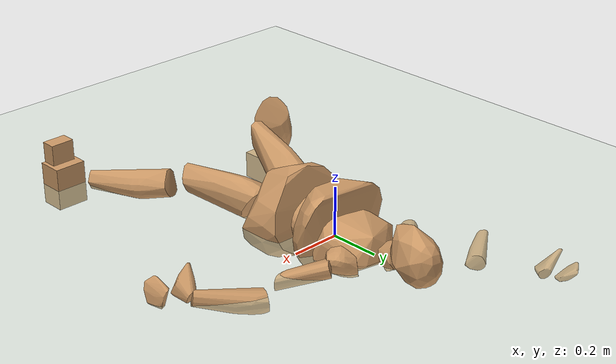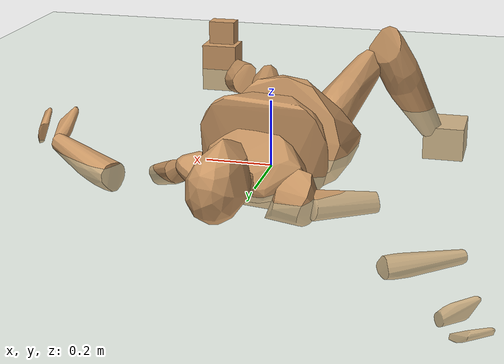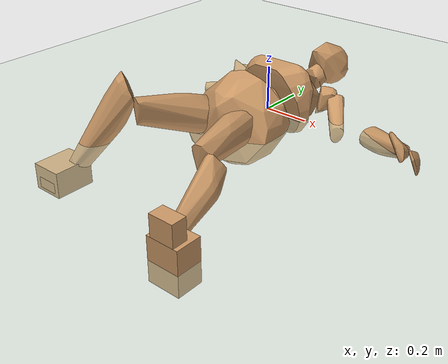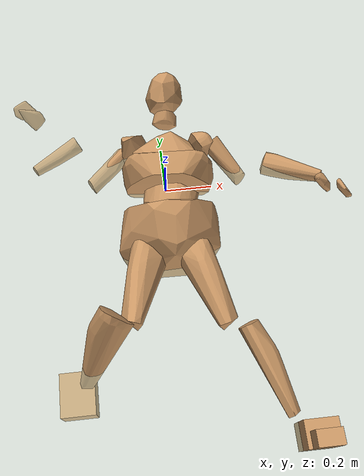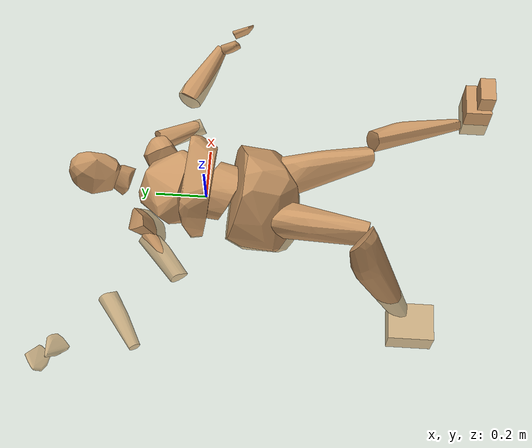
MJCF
<?xml version='1.0' encoding='UTF-8'?>
<mujoco model="humanoid">
  <compiler coordinate="local" meshdir="assets" />
  <default>
    <joint damping="0.1" armature="0.01" stiffness="100.0" limited="true" />
    <geom conaffinity="1" condim="3" contype="7" margin="0.001" rgba="0.8 0.6 .4 1" type="box" size="0.01 0.01 0.01" />
  </default>
  <asset>
    <texture type="skybox" builtin="gradient" rgb1=".4 .5 .6" rgb2="0 0 0" width="100" height="100" />
    <texture builtin="flat" height="1278" mark="cross" markrgb="1 1 1" name="texgeom" random="0.01" rgb1="0.8 0.6 0.4" rgb2="0.8 0.6 0.4" type="cube" width="127" />
    <texture builtin="checker" height="100" name="texplane" rgb1="0 0 0" rgb2="0.8 0.8 0.8" type="2d" width="100" />
    <material name="MatPlane" reflectance="0.5" shininess="1" specular="1" texrepeat="60 60" texture="texplane" />
    <material name="geom" texture="texgeom" texuniform="true" />
    <mesh file="Pelvis.stl" name="Pelvis_mesh" />
    <mesh file="L_Hip.stl" name="L_Hip_mesh" />
    <mesh file="R_Hip.stl" name="R_Hip_mesh" />
    <mesh file="Torso.stl" name="Torso_mesh" />
    <mesh file="L_Knee.stl" name="L_Knee_mesh" />
    <mesh file="R_Knee.stl" name="R_Knee_mesh" />
    <mesh file="Spine.stl" name="Spine_mesh" />
    <mesh file="L_Ankle.stl" name="L_Ankle_mesh" />
    <mesh file="R_Ankle.stl" name="R_Ankle_mesh" />
    <mesh file="Chest.stl" name="Chest_mesh" />
    <mesh file="L_Toe.stl" name="L_Toe_mesh" />
    <mesh file="R_Toe.stl" name="R_Toe_mesh" />
    <mesh file="Neck.stl" name="Neck_mesh" />
    <mesh file="L_Thorax.stl" name="L_Thorax_mesh" />
    <mesh file="R_Thorax.stl" name="R_Thorax_mesh" />
    <mesh file="Head.stl" name="Head_mesh" />
    <mesh file="L_Shoulder.stl" name="L_Shoulder_mesh" />
    <mesh file="R_Shoulder.stl" name="R_Shoulder_mesh" />
    <mesh file="L_Elbow.stl" name="L_Elbow_mesh" />
    <mesh file="R_Elbow.stl" name="R_Elbow_mesh" />
    <mesh file="L_Wrist.stl" name="L_Wrist_mesh" />
    <mesh file="R_Wrist.stl" name="R_Wrist_mesh" />
    <mesh file="L_Hand.stl" name="L_Hand_mesh" />
    <mesh file="R_Hand.stl" name="R_Hand_mesh" />
  </asset>
  <worldbody>
    <light cutoff="100" diffuse="1 1 1" dir="-0 0 -1.3" directional="true" exponent="1" pos="0 0 1.3" specular=".1 .1 .1" />
    <geom conaffinity="1" condim="3" name="floor" pos="0 0 0" rgba="0.8 0.9 0.8 1" size="100 100 .2" type="plane" material="MatPlane" />
    <body name="Pelvis" pos="-0.0015 -0.211 0.0427">
      <freejoint name="Pelvis" />
      <geom type="mesh" mesh="Pelvis_mesh" density="1000" contype="1" conaffinity="1" />
      <body name="L_Hip" pos="0.0748 -0.0975 -0.0052">
        <joint name="L_Hip_x" type="hinge" pos="0 0 0" axis="1 0 0" user="800 80 1 500" armature="0.01" range="-90.0000 90.0000" damping="0.1" stiffness="10" />
        <joint name="L_Hip_y" type="hinge" pos="0 0 0" axis="0 1 0" user="800 80 1 500" armature="0.01" range="-90.0000 90.0000" damping="0.1" stiffness="10" />
        <joint name="L_Hip_z" type="hinge" pos="0 0 0" axis="0 0 1" user="800 80 1 500" armature="0.01" range="-90.0000 90.0000" damping="0.1" stiffness="10" />
        <geom type="mesh" mesh="L_Hip_mesh" density="1000" contype="1" conaffinity="1" />
        <body name="L_Knee" pos="0.1895 -0.3461 0.0433">
          <joint name="L_Knee_x" type="hinge" pos="0 0 0" axis="1 0 0" user="800 80 1 500" armature="0.01" range="-180.0000 180.0000" damping="0.1" stiffness="10" />
          <joint name="L_Knee_y" type="hinge" pos="0 0 0" axis="0 1 0" user="800 80 1 500" armature="0.01" range="-5.6250 5.6250" damping="0.1" stiffness="10" />
          <joint name="L_Knee_z" type="hinge" pos="0 0 0" axis="0 0 1" user="800 80 1 500" armature="0.01" range="-5.6250 5.6250" damping="0.1" stiffness="10" />
          <geom type="mesh" mesh="L_Knee_mesh" density="1000" contype="1" conaffinity="1" />
          <body name="L_Ankle" pos="0.157 -0.3946 -0.0955">
            <joint name="L_Ankle_x" type="hinge" pos="0 0 0" axis="1 0 0" user="800 80 1 500" armature="0.01" range="-90.0000 90.0000" damping="0.1" stiffness="10" />
            <joint name="L_Ankle_y" type="hinge" pos="0 0 0" axis="0 1 0" user="800 80 1 500" armature="0.01" range="-90.0000 90.0000" damping="0.1" stiffness="10" />
            <joint name="L_Ankle_z" type="hinge" pos="0 0 0" axis="0 0 1" user="800 80 1 500" armature="0.01" range="-90.0000 90.0000" damping="0.1" stiffness="10" />
            <geom density="363.8337" type="box" pos="0.0395 -0.0241 0.0171" size="0.0652 0.0515 0.0872" quat="1.0000 0.0000 0.0000 0.0000" />
            <body name="L_Toe" pos="0.064 -0.0577 0.1106">
              <joint name="L_Toe_x" type="hinge" pos="0 0 0" axis="1 0 0" user="500 50 1 500" armature="0.01" range="-90.0000 90.0000" damping="0.1" stiffness="10" />
              <joint name="L_Toe_y" type="hinge" pos="0 0 0" axis="0 1 0" user="500 50 1 500" armature="0.01" range="-45.0000 45.0000" damping="0.1" stiffness="10" />
              <joint name="L_Toe_z" type="hinge" pos="0 0 0" axis="0 0 1" user="500 50 1 500" armature="0.01" range="-45.0000 45.0000" damping="0.1" stiffness="10" />
              <geom density="312.2989" type="box" pos="-0.0245 0.0125 0.0245" size="0.0491 0.0303 0.0547" quat="1.0000 0.0000 0.0000 0.0000" />
            </body>
          </body>
        </body>
      </body>
      <body name="R_Hip" pos="-0.0824 -0.0905 -0.0033">
        <joint name="R_Hip_x" type="hinge" pos="0 0 0" axis="1 0 0" user="800 80 1 500" armature="0.01" range="-90.0000 90.0000" damping="0.1" stiffness="10" />
        <joint name="R_Hip_y" type="hinge" pos="0 0 0" axis="0 1 0" user="800 80 1 500" armature="0.01" range="-90.0000 90.0000" damping="0.1" stiffness="10" />
        <joint name="R_Hip_z" type="hinge" pos="0 0 0" axis="0 0 1" user="800 80 1 500" armature="0.01" range="-90.0000 90.0000" damping="0.1" stiffness="10" />
        <geom type="mesh" mesh="R_Hip_mesh" density="1000" contype="1" conaffinity="1" />
        <body name="R_Knee" pos="-0.1774 -0.3003 0.2061">
          <joint name="R_Knee_x" type="hinge" pos="0 0 0" axis="1 0 0" user="800 80 1 500" armature="0.01" range="-180.0000 180.0000" damping="0.1" stiffness="10" />
          <joint name="R_Knee_y" type="hinge" pos="0 0 0" axis="0 1 0" user="800 80 1 500" armature="0.01" range="-5.6250 5.6250" damping="0.1" stiffness="10" />
          <joint name="R_Knee_z" type="hinge" pos="0 0 0" axis="0 0 1" user="800 80 1 500" armature="0.01" range="-5.6250 5.6250" damping="0.1" stiffness="10" />
          <geom type="mesh" mesh="R_Knee_mesh" density="1000" contype="1" conaffinity="1" />
          <body name="R_Ankle" pos="-0.1352 -0.1846 -0.3725">
            <joint name="R_Ankle_x" type="hinge" pos="0 0 0" axis="1 0 0" user="800 80 1 500" armature="0.01" range="-90.0000 90.0000" damping="0.1" stiffness="10" />
            <joint name="R_Ankle_y" type="hinge" pos="0 0 0" axis="0 1 0" user="800 80 1 500" armature="0.01" range="-90.0000 90.0000" damping="0.1" stiffness="10" />
            <joint name="R_Ankle_z" type="hinge" pos="0 0 0" axis="0 0 1" user="800 80 1 500" armature="0.01" range="-90.0000 90.0000" damping="0.1" stiffness="10" />
            <geom density="298.13422" type="box" pos="-0.0411 -0.0329 -0.0117" size="0.0704 0.0868 0.0573" quat="1.0000 0.0000 0.0000 0.0000" />
            <body name="R_Toe" pos="-0.0789 -0.1116 -0.0352">
              <joint name="R_Toe_x" type="hinge" pos="0 0 0" axis="1 0 0" user="500 50 1 500" armature="0.01" range="-90.0000 90.0000" damping="0.1" stiffness="10" />
              <joint name="R_Toe_y" type="hinge" pos="0 0 0" axis="0 1 0" user="500 50 1 500" armature="0.01" range="-45.0000 45.0000" damping="0.1" stiffness="10" />
              <joint name="R_Toe_z" type="hinge" pos="0 0 0" axis="0 0 1" user="500 50 1 500" armature="0.01" range="-45.0000 45.0000" damping="0.1" stiffness="10" />
              <geom density="406.3886" type="box" pos="0.0378 0.0477 0.0031" size="0.0476 0.0558 0.0241" quat="1.0000 0.0000 0.0000 0.0000" />
            </body>
          </body>
        </body>
      </body>
      <body name="Torso" pos="0.0035 0.1118 -0.0291">
        <joint name="Torso_x" type="hinge" pos="0 0 0" axis="1 0 0" user="1000 100 1 500" armature="0.01" range="-60.0000 60.0000" damping="0.1" stiffness="10" />
        <joint name="Torso_y" type="hinge" pos="0 0 0" axis="0 1 0" user="1000 100 1 500" armature="0.01" range="-60.0000 60.0000" damping="0.1" stiffness="10" />
        <joint name="Torso_z" type="hinge" pos="0 0 0" axis="0 0 1" user="1000 100 1 500" armature="0.01" range="-60.0000 60.0000" damping="0.1" stiffness="10" />
        <geom type="mesh" mesh="Torso_mesh" density="1000" contype="1" conaffinity="1" />
        <body name="Spine" pos="0.0097 0.116 0.005">
          <joint name="Spine_x" type="hinge" pos="0 0 0" axis="1 0 0" user="1000 100 1 500" armature="0.01" range="-60.0000 60.0000" damping="0.1" stiffness="10" />
          <joint name="Spine_y" type="hinge" pos="0 0 0" axis="0 1 0" user="1000 100 1 500" armature="0.01" range="-60.0000 60.0000" damping="0.1" stiffness="10" />
          <joint name="Spine_z" type="hinge" pos="0 0 0" axis="0 0 1" user="1000 100 1 500" armature="0.01" range="-60.0000 60.0000" damping="0.1" stiffness="10" />
          <geom type="mesh" mesh="Spine_mesh" density="1000" contype="1" conaffinity="1" />
          <body name="Chest" pos="0.0027 0.0456 0.0394">
            <joint name="Chest_x" type="hinge" pos="0 0 0" axis="1 0 0" user="1000 100 1 500" armature="0.01" range="-60.0000 60.0000" damping="0.1" stiffness="10" />
            <joint name="Chest_y" type="hinge" pos="0 0 0" axis="0 1 0" user="1000 100 1 500" armature="0.01" range="-60.0000 60.0000" damping="0.1" stiffness="10" />
            <joint name="Chest_z" type="hinge" pos="0 0 0" axis="0 0 1" user="1000 100 1 500" armature="0.01" range="-60.0000 60.0000" damping="0.1" stiffness="10" />
            <geom type="mesh" mesh="Chest_mesh" density="1000" contype="1" conaffinity="1" />
            <body name="Neck" pos="0.0098 0.2337 -0.0146">
              <joint name="Neck_x" type="hinge" pos="0 0 0" axis="1 0 0" user="500 50 1 250" armature="0.01" range="-180.0000 180.0000" damping="0.1" stiffness="10" />
              <joint name="Neck_y" type="hinge" pos="0 0 0" axis="0 1 0" user="500 50 1 250" armature="0.01" range="-180.0000 180.0000" damping="0.1" stiffness="10" />
              <joint name="Neck_z" type="hinge" pos="0 0 0" axis="0 0 1" user="500 50 1 250" armature="0.01" range="-180.0000 180.0000" damping="0.1" stiffness="10" />
              <geom type="mesh" mesh="Neck_mesh" density="1000" contype="1" conaffinity="1" />
              <body name="Head" pos="-0.0003 0.0572 0.0674">
                <joint name="Head_x" type="hinge" pos="0 0 0" axis="1 0 0" user="500 50 1 250" armature="0.01" range="-90.0000 90.0000" damping="0.1" stiffness="10" />
                <joint name="Head_y" type="hinge" pos="0 0 0" axis="0 1 0" user="500 50 1 250" armature="0.01" range="-90.0000 90.0000" damping="0.1" stiffness="10" />
                <joint name="Head_z" type="hinge" pos="0 0 0" axis="0 0 1" user="500 50 1 250" armature="0.01" range="-90.0000 90.0000" damping="0.1" stiffness="10" />
                <geom type="mesh" mesh="Head_mesh" density="1000" contype="1" conaffinity="1" />
              </body>
            </body>
            <body name="L_Thorax" pos="0.0973 0.1302 -0.0165">
              <joint name="L_Thorax_x" type="hinge" pos="0 0 0" axis="1 0 0" user="500 50 1 500" armature="0.01" range="-180.0000 180.0000" damping="0.1" stiffness="10" />
              <joint name="L_Thorax_y" type="hinge" pos="0 0 0" axis="0 1 0" user="500 50 1 500" armature="0.01" range="-180.0000 180.0000" damping="0.1" stiffness="10" />
              <joint name="L_Thorax_z" type="hinge" pos="0 0 0" axis="0 0 1" user="500 50 1 500" armature="0.01" range="-180.0000 180.0000" damping="0.1" stiffness="10" />
              <geom type="mesh" mesh="L_Thorax_mesh" density="1000" contype="1" conaffinity="1" />
              <body name="L_Shoulder" pos="0.1008 0.0311 0.005">
                <joint name="L_Shoulder_x" type="hinge" pos="0 0 0" axis="1 0 0" user="500 50 1 500" armature="0.01" range="-180.0000 180.0000" damping="0.1" stiffness="10" />
                <joint name="L_Shoulder_y" type="hinge" pos="0 0 0" axis="0 1 0" user="500 50 1 500" armature="0.01" range="-180.0000 180.0000" damping="0.1" stiffness="10" />
                <joint name="L_Shoulder_z" type="hinge" pos="0 0 0" axis="0 0 1" user="500 50 1 500" armature="0.01" range="-180.0000 180.0000" damping="0.1" stiffness="10" />
                <geom type="mesh" mesh="L_Shoulder_mesh" density="1000" contype="1" conaffinity="1" />
                <body name="L_Elbow" pos="0.2444 -0.1107 -0.0983">
                  <joint name="L_Elbow_x" type="hinge" pos="0 0 0" axis="1 0 0" user="500 50 1 150" armature="0.01" range="-720.0000 720.0000" damping="0.1" stiffness="10" />
                  <joint name="L_Elbow_y" type="hinge" pos="0 0 0" axis="0 1 0" user="500 50 1 150" armature="0.01" range="-720.0000 720.0000" damping="0.1" stiffness="10" />
                  <joint name="L_Elbow_z" type="hinge" pos="0 0 0" axis="0 0 1" user="500 50 1 150" armature="0.01" range="-720.0000 720.0000" damping="0.1" stiffness="10" />
                  <geom type="mesh" mesh="L_Elbow_mesh" density="1000" contype="1" conaffinity="1" />
                  <body name="L_Wrist" pos="0.2276 -0.1218 0.0655">
                    <joint name="L_Wrist_x" type="hinge" pos="0 0 0" axis="1 0 0" user="300 30 1 150" armature="0.01" range="-180.0000 180.0000" damping="0.1" stiffness="10" />
                    <joint name="L_Wrist_y" type="hinge" pos="0 0 0" axis="0 1 0" user="300 30 1 150" armature="0.01" range="-180.0000 180.0000" damping="0.1" stiffness="10" />
                    <joint name="L_Wrist_z" type="hinge" pos="0 0 0" axis="0 0 1" user="300 30 1 150" armature="0.01" range="-180.0000 180.0000" damping="0.1" stiffness="10" />
                    <geom type="mesh" mesh="L_Wrist_mesh" density="1000" contype="1" conaffinity="1" />
                    <body name="L_Hand" pos="0.0755 -0.05 0.0026">
                      <joint name="L_Hand_x" type="hinge" pos="0 0 0" axis="1 0 0" user="300 30 1 150" armature="0.01" range="-180.0000 180.0000" damping="0.1" stiffness="10" />
                      <joint name="L_Hand_y" type="hinge" pos="0 0 0" axis="0 1 0" user="300 30 1 150" armature="0.01" range="-180.0000 180.0000" damping="0.1" stiffness="10" />
                      <joint name="L_Hand_z" type="hinge" pos="0 0 0" axis="0 0 1" user="300 30 1 150" armature="0.01" range="-180.0000 180.0000" damping="0.1" stiffness="10" />
                      <geom type="mesh" mesh="L_Hand_mesh" density="1000" contype="1" conaffinity="1" />
                    </body>
                  </body>
                </body>
              </body>
            </body>
            <body name="R_Thorax" pos="-0.0826 0.1381 -0.0325">
              <joint name="R_Thorax_x" type="hinge" pos="0 0 0" axis="1 0 0" user="500 50 1 150" armature="0.01" range="-180.0000 180.0000" damping="0.1" stiffness="10" />
              <joint name="R_Thorax_y" type="hinge" pos="0 0 0" axis="0 1 0" user="500 50 1 150" armature="0.01" range="-180.0000 180.0000" damping="0.1" stiffness="10" />
              <joint name="R_Thorax_z" type="hinge" pos="0 0 0" axis="0 0 1" user="500 50 1 150" armature="0.01" range="-180.0000 180.0000" damping="0.1" stiffness="10" />
              <geom type="mesh" mesh="R_Thorax_mesh" density="1000" contype="1" conaffinity="1" />
              <body name="R_Shoulder" pos="-0.0861 0.0305 -0.0566">
                <joint name="R_Shoulder_x" type="hinge" pos="0 0 0" axis="1 0 0" user="500 50 1 250" armature="0.01" range="-180.0000 180.0000" damping="0.1" stiffness="10" />
                <joint name="R_Shoulder_y" type="hinge" pos="0 0 0" axis="0 1 0" user="500 50 1 250" armature="0.01" range="-180.0000 180.0000" damping="0.1" stiffness="10" />
                <joint name="R_Shoulder_z" type="hinge" pos="0 0 0" axis="0 0 1" user="500 50 1 250" armature="0.01" range="-180.0000 180.0000" damping="0.1" stiffness="10" />
                <geom type="mesh" mesh="R_Shoulder_mesh" density="1000" contype="1" conaffinity="1" />
                <body name="R_Elbow" pos="-0.2287 0.1219 -0.0962">
                  <joint name="R_Elbow_x" type="hinge" pos="0 0 0" axis="1 0 0" user="500 50 1 150" armature="0.01" range="-720.0000 720.0000" damping="0.1" stiffness="10" />
                  <joint name="R_Elbow_y" type="hinge" pos="0 0 0" axis="0 1 0" user="500 50 1 150" armature="0.01" range="-720.0000 720.0000" damping="0.1" stiffness="10" />
                  <joint name="R_Elbow_z" type="hinge" pos="0 0 0" axis="0 0 1" user="500 50 1 150" armature="0.01" range="-720.0000 720.0000" damping="0.1" stiffness="10" />
                  <geom type="mesh" mesh="R_Elbow_mesh" density="1000" contype="1" conaffinity="1" />
                  <body name="R_Wrist" pos="-0.1741 0.2043 -0.0355">
                    <joint name="R_Wrist_x" type="hinge" pos="0 0 0" axis="1 0 0" user="300 30 1 150" armature="0.01" range="-180.0000 180.0000" damping="0.1" stiffness="10" />
                    <joint name="R_Wrist_y" type="hinge" pos="0 0 0" axis="0 1 0" user="300 30 1 150" armature="0.01" range="-180.0000 180.0000" damping="0.1" stiffness="10" />
                    <joint name="R_Wrist_z" type="hinge" pos="0 0 0" axis="0 0 1" user="300 30 1 150" armature="0.01" range="-180.0000 180.0000" damping="0.1" stiffness="10" />
                    <geom type="mesh" mesh="R_Wrist_mesh" density="1000" contype="1" conaffinity="1" />
                    <body name="R_Hand" pos="-0.0577 0.0683 -0.0051">
                      <joint name="R_Hand_x" type="hinge" pos="0 0 0" axis="1 0 0" user="300 30 1 150" armature="0.01" range="-180.0000 180.0000" damping="0.1" stiffness="10" />
                      <joint name="R_Hand_y" type="hinge" pos="0 0 0" axis="0 1 0" user="300 30 1 150" armature="0.01" range="-180.0000 180.0000" damping="0.1" stiffness="10" />
                      <joint name="R_Hand_z" type="hinge" pos="0 0 0" axis="0 0 1" user="300 30 1 150" armature="0.01" range="-180.0000 180.0000" damping="0.1" stiffness="10" />
                      <geom type="mesh" mesh="R_Hand_mesh" density="1000" contype="1" conaffinity="1" />
                    </body>
                  </body>
                </body>
              </body>
            </body>
          </body>
        </body>
      </body>
    </body>
  </worldbody>
  <actuator>
    <motor name="L_Hip_x" joint="L_Hip_x" gear="1" />
    <motor name="L_Hip_y" joint="L_Hip_y" gear="1" />
    <motor name="L_Hip_z" joint="L_Hip_z" gear="1" />
    <motor name="L_Knee_x" joint="L_Knee_x" gear="1" />
    <motor name="L_Knee_y" joint="L_Knee_y" gear="1" />
    <motor name="L_Knee_z" joint="L_Knee_z" gear="1" />
    <motor name="L_Ankle_x" joint="L_Ankle_x" gear="1" />
    <motor name="L_Ankle_y" joint="L_Ankle_y" gear="1" />
    <motor name="L_Ankle_z" joint="L_Ankle_z" gear="1" />
    <motor name="L_Toe_x" joint="L_Toe_x" gear="1" />
    <motor name="L_Toe_y" joint="L_Toe_y" gear="1" />
    <motor name="L_Toe_z" joint="L_Toe_z" gear="1" />
    <motor name="R_Hip_x" joint="R_Hip_x" gear="1" />
    <motor name="R_Hip_y" joint="R_Hip_y" gear="1" />
    <motor name="R_Hip_z" joint="R_Hip_z" gear="1" />
    <motor name="R_Knee_x" joint="R_Knee_x" gear="1" />
    <motor name="R_Knee_y" joint="R_Knee_y" gear="1" />
    <motor name="R_Knee_z" joint="R_Knee_z" gear="1" />
    <motor name="R_Ankle_x" joint="R_Ankle_x" gear="1" />
    <motor name="R_Ankle_y" joint="R_Ankle_y" gear="1" />
    <motor name="R_Ankle_z" joint="R_Ankle_z" gear="1" />
    <motor name="R_Toe_x" joint="R_Toe_x" gear="1" />
    <motor name="R_Toe_y" joint="R_Toe_y" gear="1" />
    <motor name="R_Toe_z" joint="R_Toe_z" gear="1" />
    <motor name="Torso_x" joint="Torso_x" gear="1" />
    <motor name="Torso_y" joint="Torso_y" gear="1" />
    <motor name="Torso_z" joint="Torso_z" gear="1" />
    <motor name="Spine_x" joint="Spine_x" gear="1" />
    <motor name="Spine_y" joint="Spine_y" gear="1" />
    <motor name="Spine_z" joint="Spine_z" gear="1" />
    <motor name="Chest_x" joint="Chest_x" gear="1" />
    <motor name="Chest_y" joint="Chest_y" gear="1" />
    <motor name="Chest_z" joint="Chest_z" gear="1" />
    <motor name="Neck_x" joint="Neck_x" gear="1" />
    <motor name="Neck_y" joint="Neck_y" gear="1" />
    <motor name="Neck_z" joint="Neck_z" gear="1" />
    <motor name="Head_x" joint="Head_x" gear="1" />
    <motor name="Head_y" joint="Head_y" gear="1" />
    <motor name="Head_z" joint="Head_z" gear="1" />
    <motor name="L_Thorax_x" joint="L_Thorax_x" gear="1" />
    <motor name="L_Thorax_y" joint="L_Thorax_y" gear="1" />
    <motor name="L_Thorax_z" joint="L_Thorax_z" gear="1" />
    <motor name="L_Shoulder_x" joint="L_Shoulder_x" gear="1" />
    <motor name="L_Shoulder_y" joint="L_Shoulder_y" gear="1" />
    <motor name="L_Shoulder_z" joint="L_Shoulder_z" gear="1" />
    <motor name="L_Elbow_x" joint="L_Elbow_x" gear="1" />
    <motor name="L_Elbow_y" joint="L_Elbow_y" gear="1" />
    <motor name="L_Elbow_z" joint="L_Elbow_z" gear="1" />
    <motor name="L_Wrist_x" joint="L_Wrist_x" gear="1" />
    <motor name="L_Wrist_y" joint="L_Wrist_y" gear="1" />
    <motor name="L_Wrist_z" joint="L_Wrist_z" gear="1" />
    <motor name="L_Hand_x" joint="L_Hand_x" gear="1" />
    <motor name="L_Hand_y" joint="L_Hand_y" gear="1" />
    <motor name="L_Hand_z" joint="L_Hand_z" gear="1" />
    <motor name="R_Thorax_x" joint="R_Thorax_x" gear="1" />
    <motor name="R_Thorax_y" joint="R_Thorax_y" gear="1" />
    <motor name="R_Thorax_z" joint="R_Thorax_z" gear="1" />
    <motor name="R_Shoulder_x" joint="R_Shoulder_x" gear="1" />
    <motor name="R_Shoulder_y" joint="R_Shoulder_y" gear="1" />
    <motor name="R_Shoulder_z" joint="R_Shoulder_z" gear="1" />
    <motor name="R_Elbow_x" joint="R_Elbow_x" gear="1" />
    <motor name="R_Elbow_y" joint="R_Elbow_y" gear="1" />
    <motor name="R_Elbow_z" joint="R_Elbow_z" gear="1" />
    <motor name="R_Wrist_x" joint="R_Wrist_x" gear="1" />
    <motor name="R_Wrist_y" joint="R_Wrist_y" gear="1" />
    <motor name="R_Wrist_z" joint="R_Wrist_z" gear="1" />
    <motor name="R_Hand_x" joint="R_Hand_x" gear="1" />
    <motor name="R_Hand_y" joint="R_Hand_y" gear="1" />
    <motor name="R_Hand_z" joint="R_Hand_z" gear="1" />
  </actuator>
  <contact>
    <exclude body1="Torso" body2="Chest" />
    <exclude body1="Head" body2="Chest" />
    <exclude body1="R_Knee" body2="R_Toe" />
    <exclude body1="R_Knee" body2="L_Ankle" />
    <exclude body1="R_Knee" body2="L_Toe" />
    <exclude body1="L_Knee" body2="L_Toe" />
    <exclude body1="L_Knee" body2="R_Ankle" />
    <exclude body1="L_Knee" body2="R_Toe" />
    <exclude body1="L_Shoulder" body2="Chest" />
    <exclude body1="R_Shoulder" body2="Chest" />
  </contact>
  <sensor />
  <size njmax="2500" nconmax="500" />
</mujoco>
